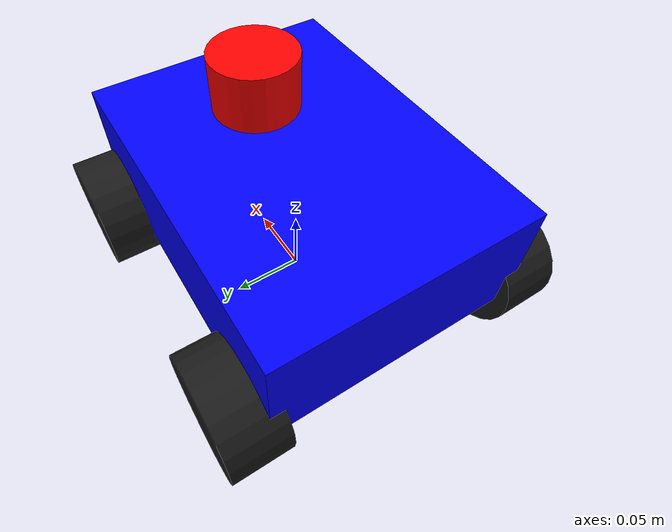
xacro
<?xml version="1.0"?>
<robot xmlns:xacro="http://www.ros.org/wiki/xacro" name="rover">

    <xacro:arg name="use_sim" default="true"/>

    <xacro:property name="chassis_length" value="0.24"/>
    <xacro:property name="chassis_width" value="0.18"/>
    <xacro:property name="chassis_height" value="0.08"/>

    <xacro:property name="wheel_radius" value="0.04"/>
    <xacro:property name="wheel_width" value="0.04"/>

    <xacro:property name="wheel_offset_x" value="0.09"/>
    <xacro:property name="wheel_offset_y" value="0.10"/>

    <link name="base_footprint"/>

    <link name="base_link">
        <visual>
            <geometry>
                <box size="${chassis_length} ${chassis_width} ${chassis_height}"/>
            </geometry>
            <material name="Blue">
                <color rgba="0 0 1 1"/>
            </material>
            <origin xyz="0 0 ${chassis_height/2}"/>
        </visual>
        <collision>
            <geometry>
                <box size="${chassis_length} ${chassis_width} ${chassis_height}"/>
            </geometry>
            <origin xyz="0 0 ${chassis_height/2}"/>
        </collision>
        <inertial>
            <mass value="2.0"/>
            <inertia ixx="0.01" ixy="0.0" ixz="0.0" iyy="0.01" iyz="0.0" izz="0.01"/>
        </inertial>
    </link>

    <gazebo reference="base_link">
        <material>Gazebo/Blue</material>
    </gazebo>

    <joint name="base_joint" type="fixed">
        <parent link="base_footprint"/>
        <child link="base_link"/>
        <origin xyz="0 0 ${wheel_radius}" rpy="0 0 0"/>
    </joint>

    <link name="laser_frame">
        <visual>
            <geometry> <cylinder radius="0.03" length="0.04"/> </geometry>
            <material name="Red"><color rgba="1 0 0 1"/></material>
        </visual>
    </link>

    <gazebo reference="laser_frame">
        <material>Gazebo/Red</material>
    </gazebo>

    <joint name="laser_joint" type="fixed">
        <parent link="base_link"/>
        <child link="laser_frame"/>
        <origin xyz="0.05 0 ${chassis_height + 0.02}" rpy="0 0 0"/>
    </joint>

    <xacro:macro name="wheel" params="prefix x_reflect y_reflect is_mimic parent_joint">
        <link name="${prefix}_wheel_link">
            <visual>
                <geometry>
                    <cylinder radius="${wheel_radius}" length="${wheel_width}"/>
                </geometry>
                <material name="Black"><color rgba="0.1 0.1 0.1 1"/></material>
                <origin xyz="0 0 0" rpy="${pi/2} 0 0"/>
            </visual>
            <collision>
                <geometry>
                    <cylinder radius="${wheel_radius}" length="${wheel_width}"/>
                </geometry>
                <origin xyz="0 0 0" rpy="${pi/2} 0 0"/>
            </collision>
            <inertial>
                <mass value="0.2"/>
                <inertia ixx="0.0005" ixy="0" ixz="0" iyy="0.0005" iyz="0" izz="0.0005"/>
            </inertial>
        </link>

        <gazebo reference="${prefix}_wheel_link">
            <material>Gazebo/Black</material>
            <mu1>1.0</mu1>
            <mu2>1.0</mu2>
        </gazebo>

        <joint name="${prefix}_wheel_joint" type="continuous">
            <parent link="base_link"/>
            <child link="${prefix}_wheel_link"/>
            <origin xyz="${x_reflect * wheel_offset_x} ${y_reflect * wheel_offset_y} 0" rpy="0 0 0"/>
            <axis xyz="0 1 0"/>

            <xacro:if value="${is_mimic}">
                <mimic joint="${parent_joint}" multiplier="1.0" offset="0.0"/>
            </xacro:if>
        </joint>
    </xacro:macro>

    <xacro:wheel prefix="rear_left" x_reflect="-1" y_reflect="1" is_mimic="false" parent_joint=""/>
    <xacro:wheel prefix="rear_right" x_reflect="-1" y_reflect="-1" is_mimic="false" parent_joint=""/>
    <xacro:wheel prefix="front_left" x_reflect="1" y_reflect="1" is_mimic="true" parent_joint="rear_left_wheel_joint"/>
    <xacro:wheel prefix="front_right" x_reflect="1" y_reflect="-1" is_mimic="true" parent_joint="rear_right_wheel_joint"/>

    <ros2_control name="WaveRoverSystem" type="system">
        <hardware>
            <xacro:if value="$(arg use_sim)">
                <plugin>gazebo_ros2_control/GazeboSystem</plugin>
            </xacro:if>

            <xacro:unless value="$(arg use_sim)">
                <plugin>waveshare_driver/WaveshareHardware</plugin>
                <param name="device">/dev/ttyUSB0</param>
                <param name="baud_rate">115200</param>
            </xacro:unless>
        </hardware>

        <joint name="rear_left_wheel_joint">
            <command_interface name="velocity">
                <param name="min">-10</param>
                <param name="max">10</param>
            </command_interface>
            <state_interface name="velocity"/>
            <state_interface name="position"/>
        </joint>

        <joint name="rear_right_wheel_joint">
            <command_interface name="velocity">
                <param name="min">-10</param>
                <param name="max">10</param>
            </command_interface>
            <state_interface name="velocity"/>
            <state_interface name="position"/>
        </joint>
    </ros2_control>

   <gazebo>
        <plugin name="gazebo_ros2_control" filename="libgazebo_ros2_control.so">
            <parameters>$(find rover_control)/config/control.yaml</parameters>
        </plugin>
    </gazebo>

</robot>
